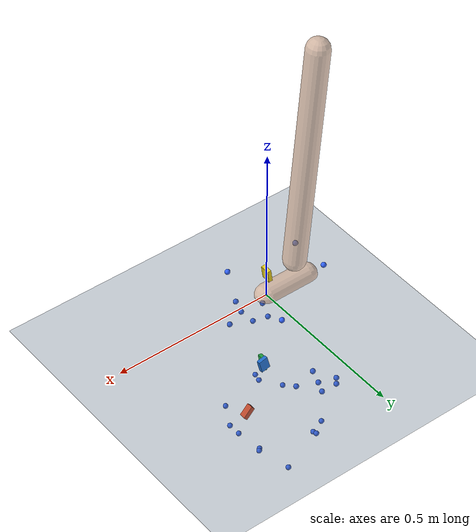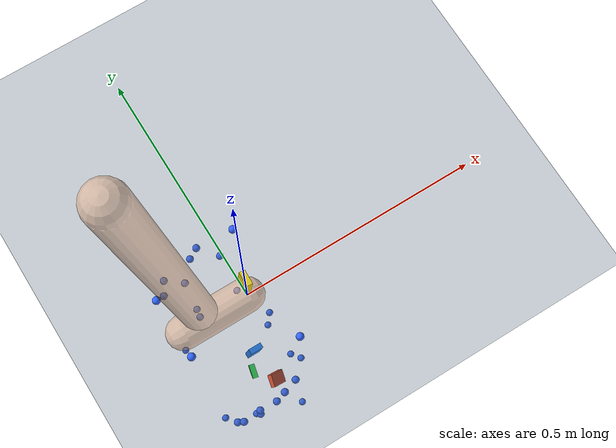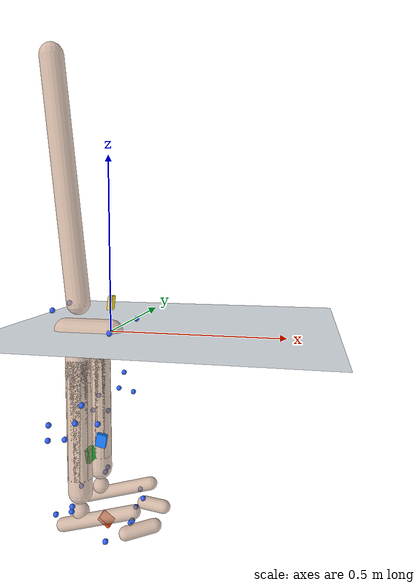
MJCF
<mujoco model="AB23">
  <compiler angle="radian" autolimits="true"/>
  <option timestep="0.005" gravity="0 0 -9.81"><flag contact="disable"/></option>
  <visual><global offwidth="1280" offheight="720"/></visual>
  <default><joint limited="false" damping="0"/><geom contype="0" conaffinity="0"/></default>
  <asset>
    <texture name="grid" type="2d" builtin="checker" rgb1="0.2 0.3 0.4" rgb2="0.3 0.4 0.5" width="512" height="512"/>
    <material name="grid" texture="grid" texrepeat="2 2" texuniform="true"/>
    <material name="skin" rgba="0.8 0.65 0.55 0.7"/>
  </asset>
  <worldbody>
    <light pos="0 0 4" dir="0 0 -1"/>
    <geom name="floor" type="plane" size="0 0 0.05" material="grid"/>
    <body name="pelvis" pos="0 0 0" quat="1 0 0 0">
      <joint name="pelvis_tx" type="slide" axis="1 0 0"/>
      <joint name="pelvis_ty" type="slide" axis="0 0 1"/>
      <joint name="pelvis_tz" type="slide" axis="0 -1 0"/>
      <joint name="pelvis_tilt" type="hinge" axis="0 -1 0"/>
      <joint name="pelvis_list" type="hinge" axis="1 0 0"/>
      <joint name="pelvis_rotation" type="hinge" axis="0 0 1"/>
      <inertial pos="-0.069428244 0 0" mass="12.4839" diaginertia="0.12483893 0.12483893 0.12483893"/>
      <geom type="capsule" fromto="0 0 0 -0.13885649 0 0" size="0.035" material="skin" mass="0"/>
      <site name="m_R_ASIS" pos="0.040368546 -0.12488615 0.018440229" size="0.008" rgba="0.2 0.4 1 1" group="2"/>
      <site name="m_L_ASIS" pos="0.040872285 0.12025411 0.018730882" size="0.008" rgba="0.2 0.4 1 1" group="2"/>
      <site name="m_L_PSIS" pos="-0.15353043 0.060578444 0.070536663" size="0.008" rgba="0.2 0.4 1 1" group="2"/>
      <site name="m_R_PSIS" pos="-0.15140823 -0.062263557 0.065017875" size="0.008" rgba="0.2 0.4 1 1" group="2"/>
      <body name="femur_r" pos="-0.069428244 -0.081997997 -0.064910989" quat="1 0 0 0">
        <joint name="hip_flexion_r" type="hinge" axis="0 -1 0"/>
        <joint name="hip_adduction_r" type="hinge" axis="1 0 0"/>
        <joint name="hip_rotation_r" type="hinge" axis="0 0 1"/>
        <inertial pos="0 0 -0.17318711" mass="9.8597" diaginertia="0.098596999 0.098596999 0.098596999"/>
        <geom type="capsule" fromto="0 0 0 0 0 -0.34637423" size="0.035" material="skin" mass="0"/>
        <site name="m_R_Thigh_Upper" pos="0.046284272 -0.088179957 -0.10325602" size="0.008" rgba="0.2 0.4 1 1" group="2"/>
        <site name="m_R_Thigh_Front" pos="0.082891285 -0.069582666 -0.15855346" size="0.008" rgba="0.2 0.4 1 1" group="2"/>
        <site name="m_R_Thigh_Rear" pos="0.026810202 -0.087781583 -0.15490495" size="0.008" rgba="0.2 0.4 1 1" group="2"/>
        <site name="m_R_Knee_Lat" pos="-0.0010779302 -0.056418826 -0.40687298" size="0.008" rgba="0.2 0.4 1 1" group="2"/>
        <site name="imu_thigh" type="box" size="0.02 0.015 0.006" pos="0.049115397 0.04524885 -0.2501434" quat="0.51421054 0.57775492 -0.46818651 0.42730336" rgba="0.1 0.5 1 1" group="1"/>
        <body name="tibia_r" pos="0 0 0" quat="1 0 0 0">
          <joint name="knee_r_translation1" type="slide" axis="1 0 0"/>
          <joint name="knee_r_translation2" type="slide" axis="0 0 1"/>
          <joint name="knee_angle_r" type="hinge" axis="0 -1 0"/>
          <inertial pos="0 0 -0.19453144" mass="3.93004" diaginertia="0.03930036 0.03930036 0.03930036"/>
          <geom type="capsule" fromto="0 0 0 0 0 -0.38906287" size="0.035" material="skin" mass="0"/>
          <site name="m_R_Shank_Upper" pos="-0.050875375 -0.086899636 -0.16603889" size="0.008" rgba="0.2 0.4 1 1" group="2"/>
          <site name="m_R_Shank_Front" pos="-0.0086404002 -0.078028718 -0.2060585" size="0.008" rgba="0.2 0.4 1 1" group="2"/>
          <site name="m_R_Shank_Rear" pos="-0.060730749 -0.073438538 -0.21541173" size="0.008" rgba="0.2 0.4 1 1" group="2"/>
          <site name="m_R_Ankle_Lat" pos="-0.0074067719 -0.047138427 -0.42668108" size="0.008" rgba="0.2 0.4 1 1" group="2"/>
          <site name="imu_shank" type="box" size="0.02 0.015 0.006" pos="0.026491354 0.013379081 -0.28195268" quat="0.70470393 0.14305551 0.69483765 -0.011319472" rgba="0.1 0.8 0.2 1" group="1"/>
          <body name="talus_r" pos="0 0 -0.44803705" quat="1 0 0 0">
            <joint name="ankle_angle_r" type="hinge" axis="-0.10501355 -0.97912632 -0.17402245"/>
            <inertial pos="0 0 0" mass="0.106002" diaginertia="0.0010600232 0.0010600232 0.0010600232"/>
            <geom type="sphere" size="0.025" material="skin" mass="0"/>
            <body name="calcn_r" pos="-0.050815737 -0.0082522173 -0.043709661" quat="1 0 0 0">
              <joint name="subtalar_angle_r" type="hinge" axis="0.78717961 0.12094949 0.60474746"/>
              <inertial pos="0.10578844 0 0.031736531" mass="1.32503" diaginertia="0.01325029 0.01325029 0.01325029"/>
              <geom type="capsule" fromto="0 0 0 0.21157687 0 0.063473061" size="0.02" material="skin" mass="0"/>
              <site name="m_R_Heel" pos="-0.020674025 -0.0050393938 0.030845268" size="0.008" rgba="0.2 0.4 1 1" group="2"/>
              <site name="m_R_Toe_Lat" pos="0.15078891 -0.062180385 0.003788944" size="0.008" rgba="0.2 0.4 1 1" group="2"/>
              <site name="m_R_Toe_Med" pos="0.18707947 0.048598651 0.0018315767" size="0.008" rgba="0.2 0.4 1 1" group="2"/>
              <site name="m_R_Toe_Tip" pos="0.20050072 0.023972581 0.023731219" size="0.008" rgba="0.2 0.4 1 1" group="2"/>
              <site name="imu_foot" type="box" size="0.02 0.015 0.006" pos="0.12670666 0.012489505 0.025523348" quat="0.91605695 0.20550752 0.34232413 -0.037689693" rgba="1 0.3 0.1 1" group="1"/>
              <body name="toes_r" pos="0.18914972 -0.0011425151 -0.0021157687" quat="1 0 0 0">
                <joint name="mtp_angle_r" type="hinge" axis="-0.5809544 -0.81393611 0"/>
                <inertial pos="0.036602799 0.018512976 0.0063473061" mass="0.229601" diaginertia="0.0022960103 0.0022960103 0.0022960103"/>
                <geom type="capsule" fromto="0 0 0 0.073205597 0.037025952 0.012694612" size="0.02" material="skin" mass="0"/>
              </body>
            </body>
          </body>
        </body>
      </body>
      <body name="femur_l" pos="-0.069428244 0.081997997 -0.064910989" quat="1 0 0 0">
        <joint name="hip_flexion_l" type="hinge" axis="0 -1 0"/>
        <joint name="hip_adduction_l" type="hinge" axis="-1 0 0"/>
        <joint name="hip_rotation_l" type="hinge" axis="0 0 -1"/>
        <inertial pos="0 0 -0.17318711" mass="9.8597" diaginertia="0.098596999 0.098596999 0.098596999"/>
        <geom type="capsule" fromto="0 0 0 0 0 -0.34637423" size="0.035" material="skin" mass="0"/>
        <site name="m_L_Thigh_Upper" pos="0.047573506 0.10022568 -0.10473148" size="0.008" rgba="0.2 0.4 1 1" group="2"/>
        <site name="m_L_Thigh_Front" pos="0.086147237 0.07594333 -0.16031561" size="0.008" rgba="0.2 0.4 1 1" group="2"/>
        <site name="m_L_Thigh_Rear" pos="0.028430691 0.1030257 -0.15942893" size="0.008" rgba="0.2 0.4 1 1" group="2"/>
        <site name="m_L_Knee_Lat" pos="-0.00071073541 0.067123063 -0.41795977" size="0.008" rgba="0.2 0.4 1 1" group="2"/>
        <body name="tibia_l" pos="0 0 0" quat="1 0 0 0">
          <joint name="knee_l_translation1" type="slide" axis="1 0 0"/>
          <joint name="knee_l_translation2" type="slide" axis="0 0 1"/>
          <joint name="knee_angle_l" type="hinge" axis="0 -1 0"/>
          <inertial pos="0 0 -0.19453144" mass="3.93004" diaginertia="0.03930036 0.03930036 0.03930036"/>
          <geom type="capsule" fromto="0 0 0 0 0 -0.38906287" size="0.035" material="skin" mass="0"/>
          <site name="m_L_Shank_Upper" pos="-0.041337073 0.099217505 -0.18794544" size="0.008" rgba="0.2 0.4 1 1" group="2"/>
          <site name="m_L_Shank_Front" pos="-0.0032141405 0.083623223 -0.23178615" size="0.008" rgba="0.2 0.4 1 1" group="2"/>
          <site name="m_L_Shank_Rear" pos="-0.056306866 0.08334695 -0.23443515" size="0.008" rgba="0.2 0.4 1 1" group="2"/>
          <site name="m_L_Ankle_Lat" pos="-0.0030960733 0.050032091 -0.42718921" size="0.008" rgba="0.2 0.4 1 1" group="2"/>
          <body name="talus_l" pos="0 0 -0.44803705" quat="1 0 0 0">
            <joint name="ankle_angle_l" type="hinge" axis="0.10501355 -0.97912632 0.17402245"/>
            <inertial pos="0 0 0" mass="0.106002" diaginertia="0.0010600232 0.0010600232 0.0010600232"/>
            <geom type="sphere" size="0.025" material="skin" mass="0"/>
            <body name="calcn_l" pos="-0.050815737 0.0082522173 -0.043709661" quat="1 0 0 0">
              <joint name="subtalar_angle_l" type="hinge" axis="-0.78717961 0.12094949 -0.60474746"/>
              <inertial pos="0.10578844 0 0.031736531" mass="1.32503" diaginertia="0.01325029 0.01325029 0.01325029"/>
              <geom type="capsule" fromto="0 0 0 0.21157687 0 0.063473061" size="0.02" material="skin" mass="0"/>
              <site name="m_L_Heel" pos="-0.019202582 -0.00095586632 0.030266967" size="0.008" rgba="0.2 0.4 1 1" group="2"/>
              <site name="m_L_Toe_Lat" pos="0.158269 0.065780614 0.0071667674" size="0.008" rgba="0.2 0.4 1 1" group="2"/>
              <site name="m_L_Toe_Med" pos="0.17760729 -0.044735494 0.0054345088" size="0.008" rgba="0.2 0.4 1 1" group="2"/>
              <site name="m_L_Toe_Tip" pos="0.19455893 -0.025070284 0.024113792" size="0.008" rgba="0.2 0.4 1 1" group="2"/>
              <body name="toes_l" pos="0.18914972 0.0011425151 -0.0021157687" quat="1 0 0 0">
                <joint name="mtp_angle_l" type="hinge" axis="0.5809544 -0.81393611 0"/>
                <inertial pos="0.036602799 -0.018512976 0.0063473061" mass="0.229601" diaginertia="0.0022960103 0.0022960103 0.0022960103"/>
                <geom type="capsule" fromto="0 0 0 0.073205597 -0.037025952 0.012694612" size="0.02" material="skin" mass="0"/>
              </body>
            </body>
          </body>
        </body>
      </body>
      <body name="torso" pos="-0.098888602 0 0.080033973" quat="1 0 0 0">
        <joint name="lumbar_extension" type="hinge" axis="0 -1 0"/>
        <joint name="lumbar_bending" type="hinge" axis="1 0 0"/>
        <joint name="lumbar_rotation" type="hinge" axis="0 0 1"/>
        <inertial pos="-0.032683631 0 0.34862539" mass="36.2916" diaginertia="0.36291591 0.36291591 0.36291591"/>
        <geom type="capsule" fromto="0 0 0 -0.065367261 0 0.69725079" size="0.035" material="skin" mass="0"/>
        <site name="imu_trunk" type="box" size="0.02 0.015 0.006" pos="0.10010539 0.002614696 0.0033237154" quat="0.65846784 0.012381863 0.75235153 -0.015295656" rgba="0.9 0.8 0.1 1" group="1"/>
      </body>
    </body>
  </worldbody>
  <sensor>
<accelerometer name="imu_foot_acc" site="imu_foot"/>
<gyro name="imu_foot_gyr" site="imu_foot"/>
<accelerometer name="imu_shank_acc" site="imu_shank"/>
<gyro name="imu_shank_gyr" site="imu_shank"/>
<accelerometer name="imu_thigh_acc" site="imu_thigh"/>
<gyro name="imu_thigh_gyr" site="imu_thigh"/>
<accelerometer name="imu_trunk_acc" site="imu_trunk"/>
<gyro name="imu_trunk_gyr" site="imu_trunk"/>
</sensor>
</mujoco>
